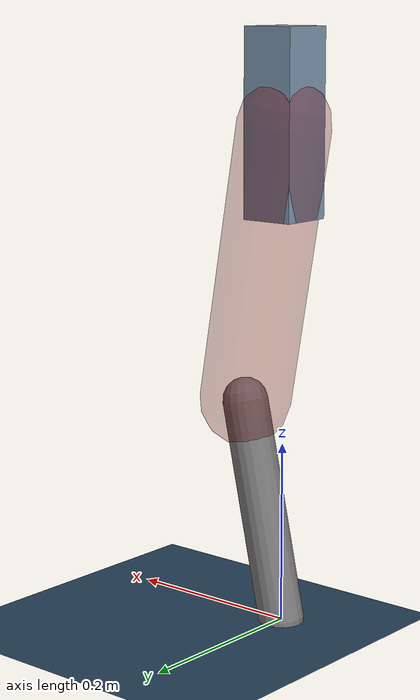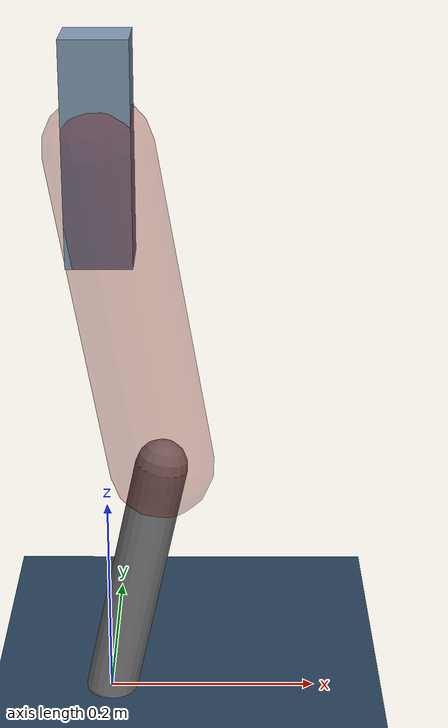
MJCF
<mujoco model="Hopper2D">
	<compiler inertiafromgeom="true" angle="radian" />
	<option timestep="0.001" integrator="implicit" cone="elliptic" solver="Newton" tolerance="1e-10" />

	<default>
		<geom contype="1" conaffinity="1" condim="3" friction="2 0.005 0.0001" solref="0.005 1" />
		<joint limited="true" damping="0.1" />
	</default>

	<asset>
		<texture name="skybox" type="skybox" builtin="gradient" rgb1=".4 .6 .8" rgb2="0 0 0" width="800" height="800" />
		<texture name="grid" type="2d" builtin="checker" rgb1=".1 .2 .3" rgb2=".2 .3 .4" width="300" height="300" mark="edge" markrgb=".2 .3 .4" />
		<material name="ground" texture="grid" texrepeat="1 1" texuniform="true" reflectance="0.1" />
		<material name="leg" rgba="0.5 0.6 0.7 1" />
	</asset>

	<worldbody>

		<geom name="floor" type="plane" size="5 5 0.25" material="ground" />

		<light directional="false" diffuse="0.8 0.8 0.8" specular="0.3 0.3 0.3" pos="0 0 2" dir="0 0 -1" />
		<light mode="targetbodycom" target="base" directional="false" diffuse="0.8 0.8 0.8" specular="0.3 0.3 0.3" pos="0 0 2" dir="0 0 -1" />

		<camera name="fixed" pos="0 -2 1" xyaxes="1 0 0 0 0 1" />
		<camera name="tracking" mode="trackcom" pos="0 -3 1" />

		<body name="root" pos="0 0 0.5442793887274721">
			<joint name="slide_x" type="slide" axis="1 0 0" range="-100 100" />
			<joint name="slide_z" type="slide" axis="0 0 1" range="0 10" />

			<body name="base" pos="0 0 0">
				<geom name="torso" type="box" size="0.03 0.03 0.1" mass="2.186" material="leg" />

				<body name="link1" pos="0 0 0" euler="0 1.4005590564030783 0">
					<joint type="hinge" axis="0 -1 0" pos="0 0 0" name="hinge1" limited="true" range="-3.14 3.14" stiffness="0" damping="0.1" />
					<geom name="thigh" type="capsule" fromto="0 0 0 0.3074133756099897 0 0" size="0.05" rgba="0.5 0 0 0.3" mass="1.0088161141469723" />

					<body name="link2" pos="0.3074133756099897 0 0" euler="0 0.38280230995624054 0">
						<joint type="hinge" axis="0 -1 0" pos="0 0 0" name="hinge2" limited="true" range="-3.14 3.14" stiffness="0" damping="0.1" />
						<geom name="shank" type="capsule" fromto="0 0 0 0.24686601311748235 0 0" size="0.025" mass="0.43997941180573413" />

					</body>
				</body>
			</body>
		</body>
	</worldbody>

	<actuator>
		<motor name="torque1" joint="hinge1" ctrlrange="-100.44295469823729 100.44295469823729" ctrllimited="true" gear="1" />
		<motor name="torque2" joint="hinge2" ctrlrange="-85.84860076696897 85.84860076696897" ctrllimited="true" gear="1" />
	</actuator>
</mujoco>
